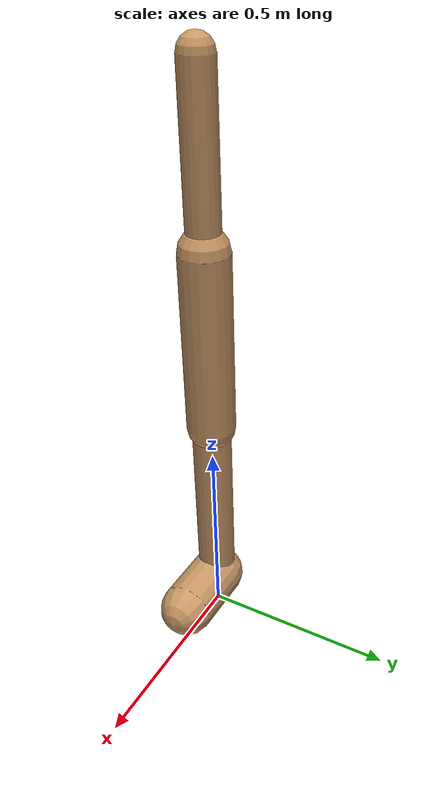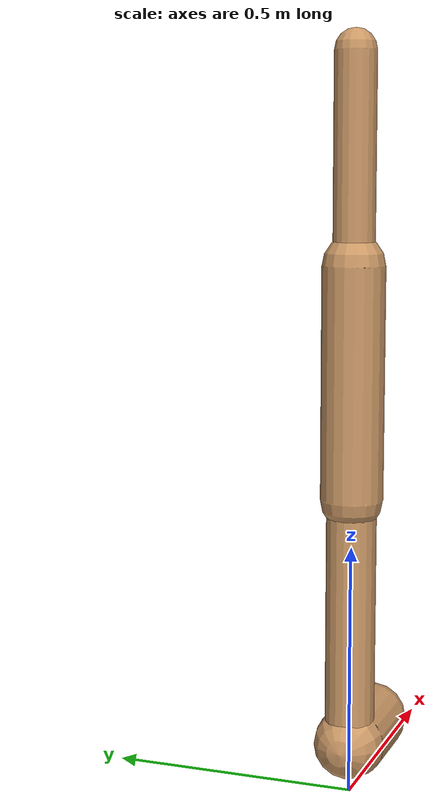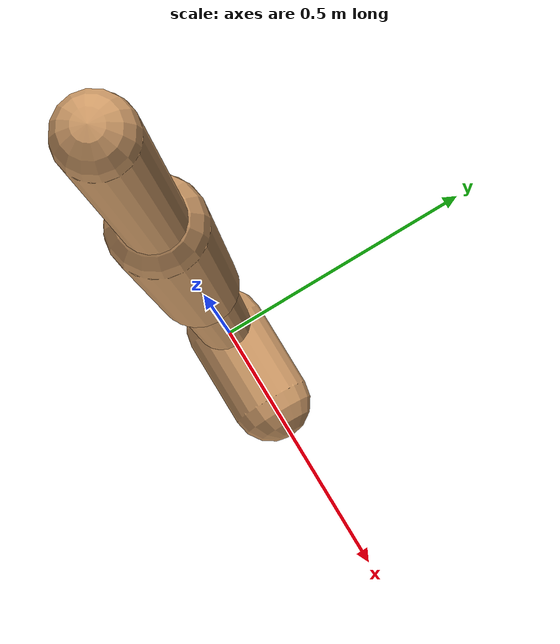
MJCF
<mujoco model="walker2d">
  <compiler angle="degree" coordinate="global" inertiafromgeom="true" />
  <default>
    <joint armature="0.01" damping=".1" limited="true" />
    <geom conaffinity="0" condim="3" contype="1" density="1000" friction="0.8 .1 .1" rgba="0.8 0.6 .4 1" />
  </default>
  <option integrator="RK4" timestep="0.002" />
  <worldbody>

    <body name="torso" pos="0 0 0.008563358487499707">
      <joint armature="0" axis="1 0 0" damping="0" limited="false" name="ignorex" pos="0 0 0" stiffness="0" type="slide" />
      <joint armature="0" axis="0 0 1" damping="0" limited="false" name="ignorez" pos="0 0 0" ref="1.25" stiffness="0" type="slide" />
      <joint armature="0" axis="0 1 0" damping="0" limited="false" name="ignorey" pos="0 0 0" stiffness="0" type="hinge" />
      <geom fromto="0 0 1.45 0 0 1.05" name="torso_geom" size="0.040563574247346294" type="capsule" />
      <body name="thigh">
        <joint axis="0 -1 0" name="thigh_joint" pos="0 0 1.05" range="-150 0" type="hinge" />
        <geom fromto="0.0 0.0 1.05 0.0 0.0 0.5959436722953948" name="thigh_geom" size="0.06121120120562357" type="capsule" />
        <body name="leg" pos="0.0 0.0 -0.004056327704605178">
          <joint axis="0 -1 0" name="leg_joint" pos="0 0 0.6" range="-150 0" type="hinge" />
          <geom fromto="0.0 0.0 0.6 0.0 0.0 0.09549296921710543" name="leg_geom" size="0.048968960964498855" type="capsule" />
          <body name="foot" pos="0.0 0.0 -0.004507030782894578">
            <joint axis="0 -1 0" name="foot_joint" pos="0 0 0.1" range="-45 45" type="hinge" />
            <geom fromto="0.0 0.0 0.1 0.1598845877827438 0.0 0.1" name="foot_geom" size="0.07085483313288986" type="capsule" />
          </body>
        </body>
      </body>

      <body name="thigh_left">
        <joint axis="0 -1 0" name="thigh_left_joint" pos="0 0 1.05" range="-150 0" type="hinge" />
        <geom fromto="0.0 0.0 1.05 0.0 0.0 0.5959436722953948" name="thigh_left_geom" rgba=".7 .3 .6 1" size="0.06121120120562357" type="capsule" />
        <body name="leg_left" pos="0.0 0.0 -0.004056327704605178">
          <joint axis="0 -1 0" name="leg_left_joint" pos="0 0 0.6" range="-150 0" type="hinge" />
          <geom fromto="0.0 0.0 0.6 0.0 0.0 0.09549296921710543" name="leg_left_geom" rgba=".7 .3 .6 1" size="0.048968960964498855" type="capsule" />
          <body name="foot_left" pos="0.0 0.0 -0.004507030782894578">
            <joint axis="0 -1 0" name="foot_left_joint" pos="0 0 0.1" range="-45 45" type="hinge" />
            <geom fromto="0.0 0.0 0.1 0.1598845877827438 0.0 0.1" name="foot_left_geom" rgba=".7 .3 .6 1" size="0.07085483313288986" type="capsule" />
          </body>
        </body>
      </body>
    </body>
  </worldbody>
  <actuator>

    <motor ctrllimited="true" ctrlrange="-1.0 1.0" gear="100" joint="thigh_joint" />
    <motor ctrllimited="true" ctrlrange="-1.0 1.0" gear="100" joint="leg_joint" />
    <motor ctrllimited="true" ctrlrange="-1.0 1.0" gear="100" joint="foot_joint" />
    <motor ctrllimited="true" ctrlrange="-1.0 1.0" gear="100" joint="thigh_left_joint" />
    <motor ctrllimited="true" ctrlrange="-1.0 1.0" gear="100" joint="leg_left_joint" />
    <motor ctrllimited="true" ctrlrange="-1.0 1.0" gear="100" joint="foot_left_joint" />

  </actuator>
</mujoco>
